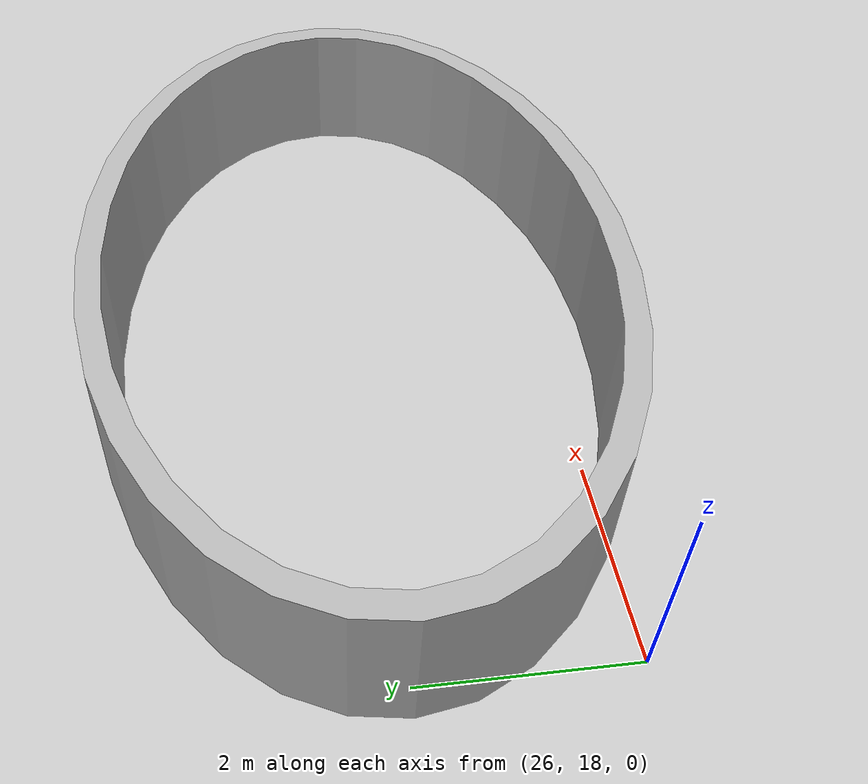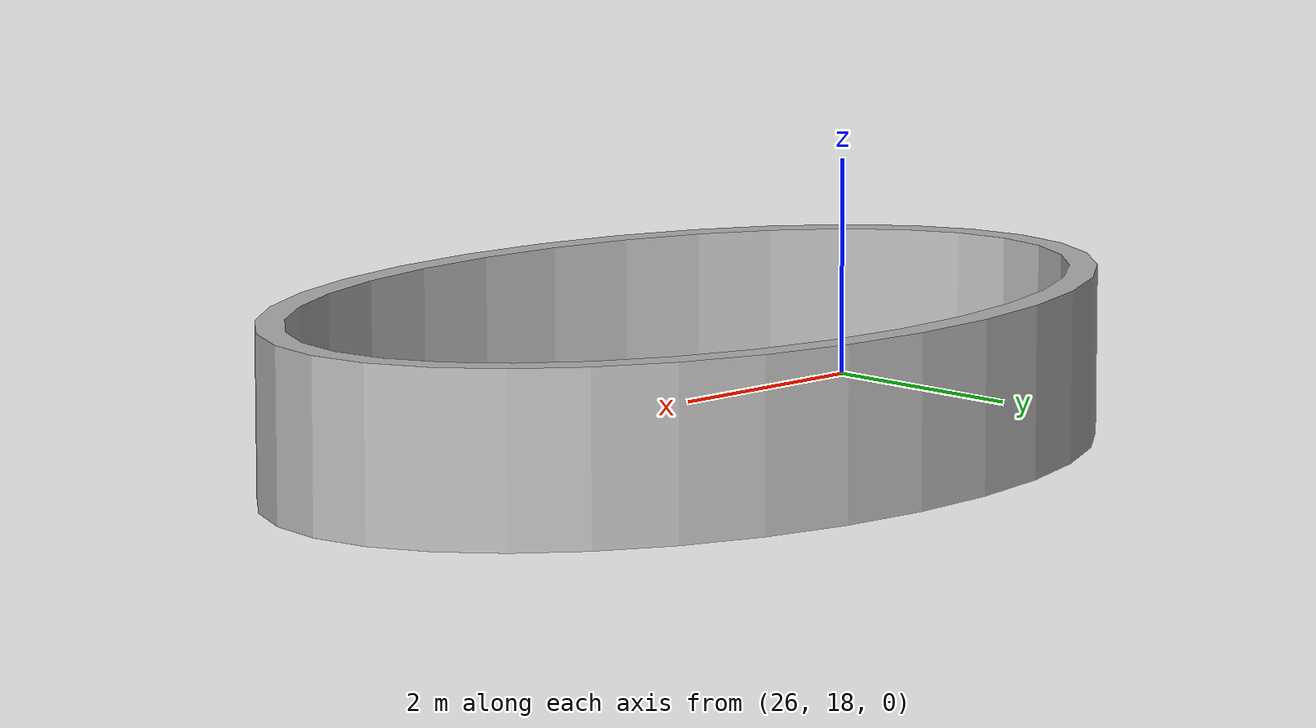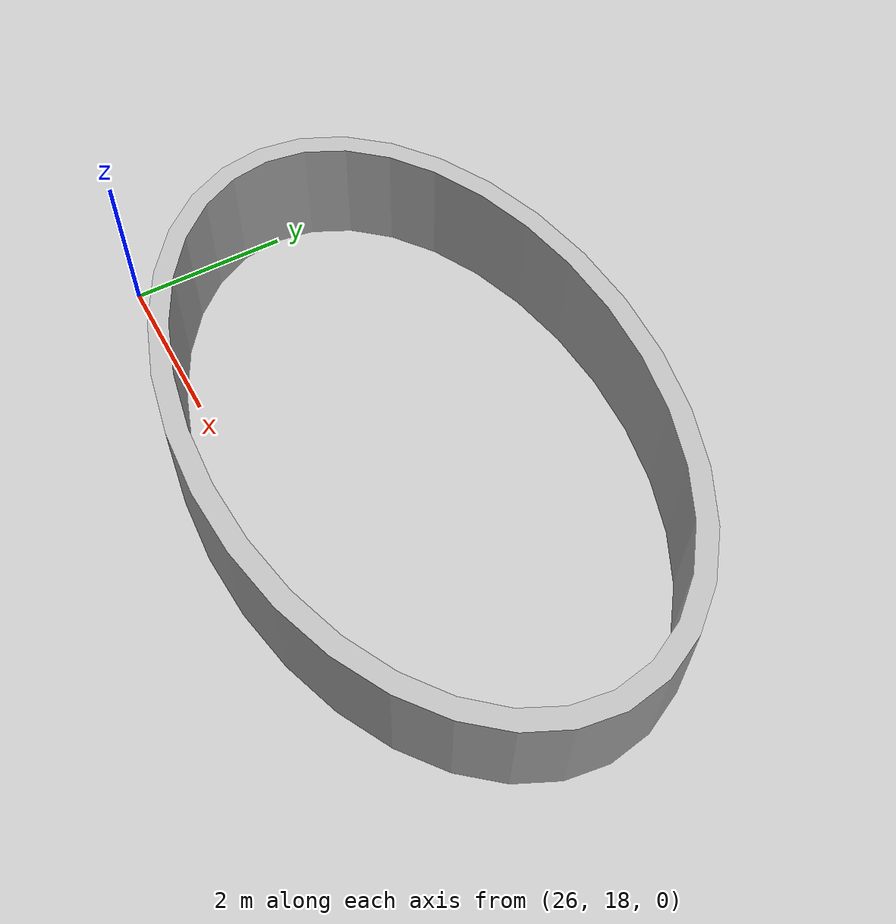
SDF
<?xml version='1.0'?>
<sdf version='1.4'>

  <model name='ellipse'>
    <pose>30 20 0 0 0 0</pose>
    <static>true</static>
    <link name="wall">
      <visual name="wall_visual">
        <geometry>
          <mesh>
            <uri>model://ellipse/meshes/ellipse.dae</uri>
          </mesh>
        </geometry>
      </visual>
      <collision name="wall_collision">
        <geometry>
          <mesh>
            <uri>model://ellipse/meshes/ellipse.dae</uri>
          </mesh>
        </geometry>
      </collision>
    </link>
  </model>
</sdf>
